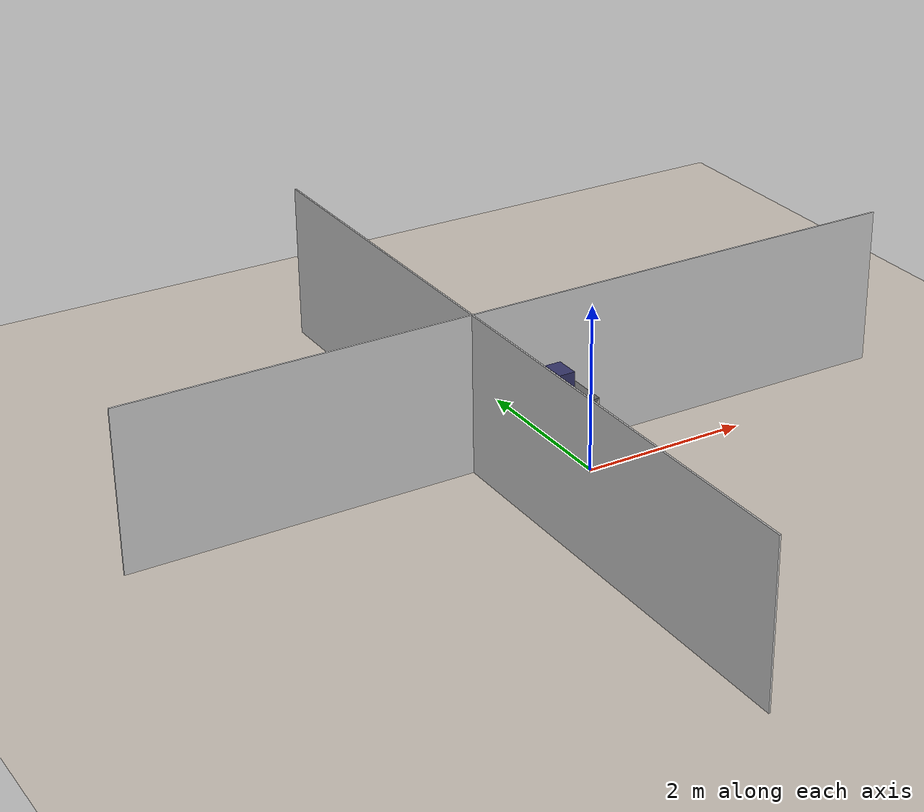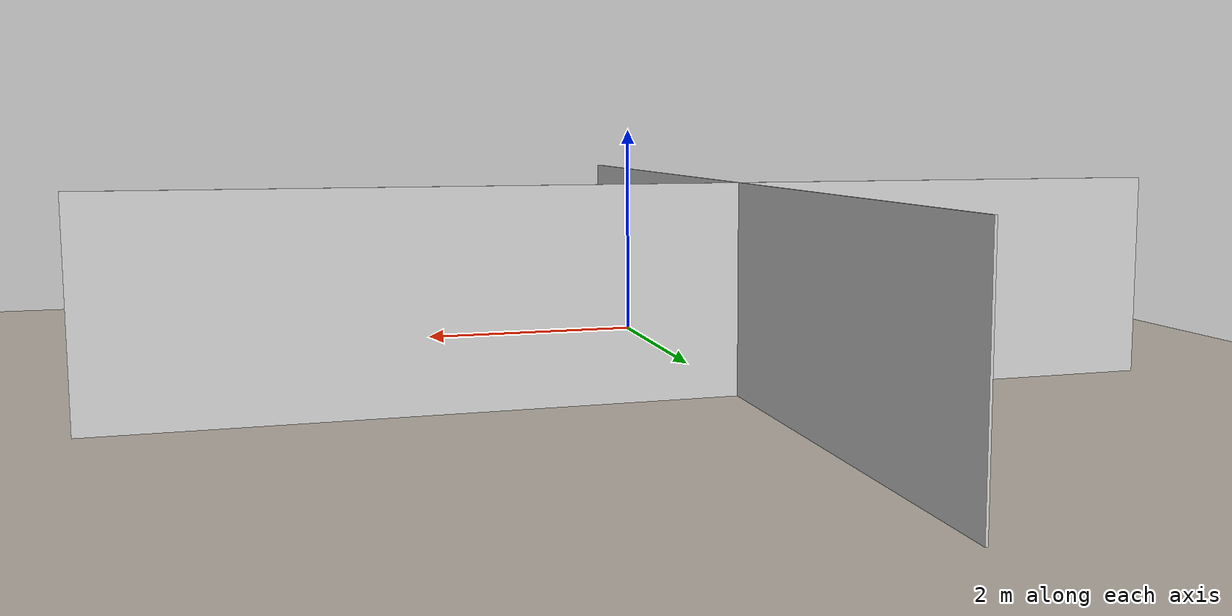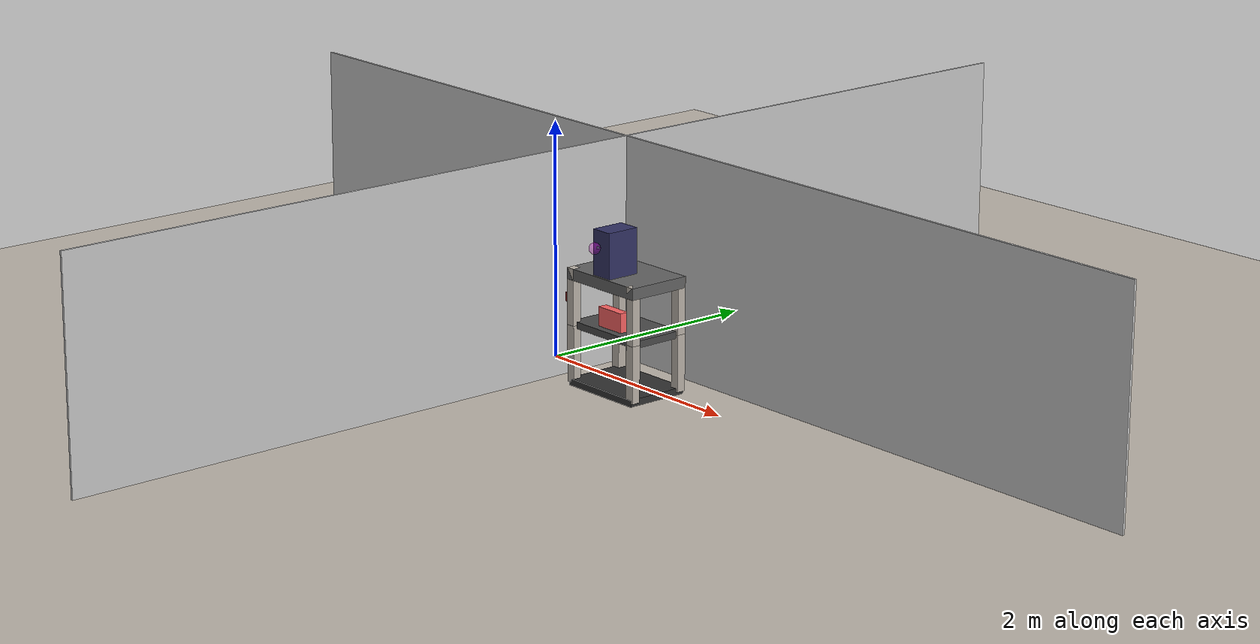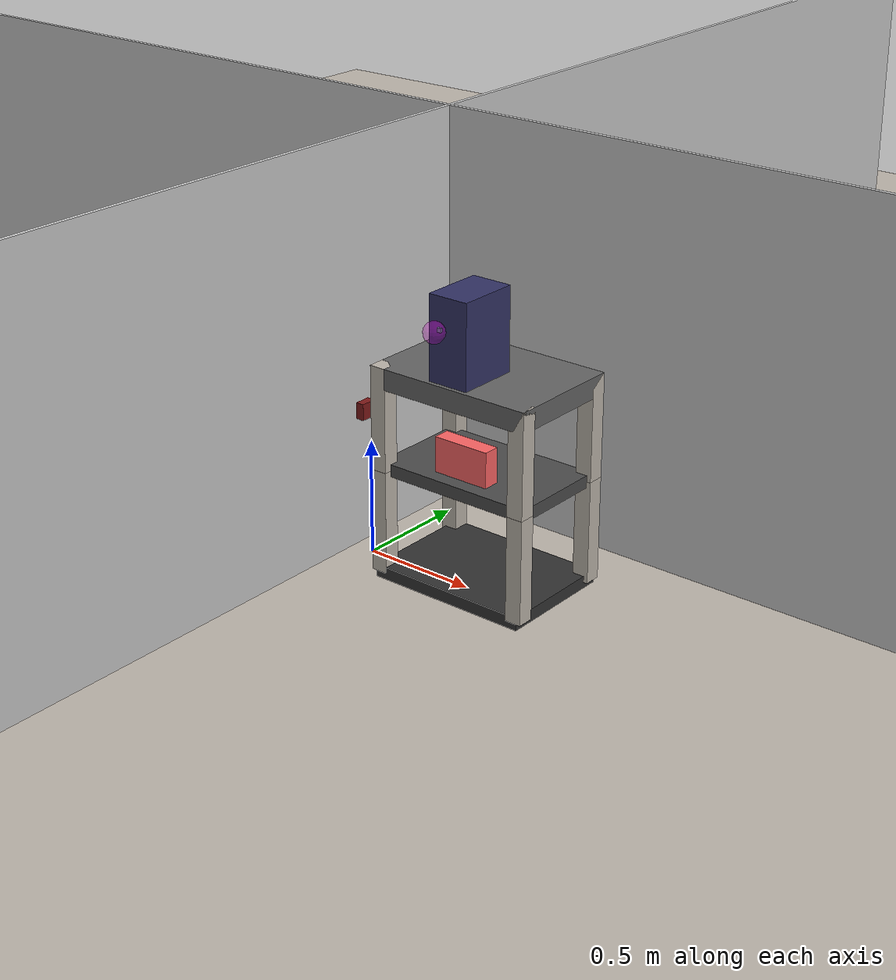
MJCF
<mujoco model="computer_rack_scene">
    <include file="materials.xml"/>
    <include file="cc_sphere.xml"/>
    <include file="computer_rack.xml"/>
    <default>
        <default class="visual">
            <geom contype="0" conaffinity="0" group="2"/>
        </default>
    </default>
    <worldbody>
        <body pos="0 0 -0.445" name="floor">
            <geom type="plane" name="floor" size="50 50 0.1"  material="cream-plaster"/>
        </body>
        <light pos="0 -2 10" mode="trackcom" exponent="1" ambient="0.04 0 0"/>
        <light pos="0 0 10" mode="trackcom" exponent="1" ambient="0.03 0.03 0"/>
    </worldbody>
</mujoco>

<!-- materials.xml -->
<mujocoinclude>
    <asset>
        <texture file="textures/light-wood.png" type="2d" name="tex-light-wood"/>
        <texture file="textures/dark-wood.png" type="2d" name="tex-dark-wood"/>
        <texture file="textures/metal.png" type="2d" name="tex-metal"/>
        <texture file="textures/cream-plaster.png" type="2d" name="tex-cream-plaster"/>
        <texture file="textures/grass.png" type="2d" name="tex-grass"/>
        <material name="light-wood" reflectance="0" texrepeat="15 15" texture="tex-light-wood" texuniform="true"/>
        <material name="dark-wood" reflectance="0" texrepeat="5 5" texture="tex-dark-wood" texuniform="true"/>
        <material name="metal" reflectance="0" texrepeat="5 5" texture="tex-metal" texuniform="true"/>
        <material name="cream-plaster" reflectance="0" texrepeat="5 5" texture="tex-cream-plaster" texuniform="true"/>
        <material name="grass" reflectance="0" texrepeat="0.2 0.2" texture="tex-grass" texuniform="true"/>
    </asset>
</mujocoinclude>

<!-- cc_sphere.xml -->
<mujoco model="cc_sphere">
    <worldbody>
        <body pos="0 0 0" name="cc_sphere">
            <!-- To get the most precise results, the size here should be half of the resolution of the voxelgrid -->
            <geom type="sphere" name="cc_sphere" size="0.005" rgba="1 1 1 0.1"/>
            <joint type="free" name="cc_sphere" damping="0.1"/>
        </body>
    </worldbody>
</mujoco>

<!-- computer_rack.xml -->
<mujoco model="computer_rack">
    <worldbody>
        <body name="computer_rack" pos="0 0.76 -0.445" quat="0.707 0 0 0.707">
            <body name="wall">
                <body name="left_wall" pos="0 0.7 0.975">
                    <geom name="left_wall" type="box" size="5 0.01 1" rgba="0.8 0.8 0.8 1"/>
                    <body name="attach" pos="-0.05 -0.035 -0.3">
                        <geom name="rack_attach" type="box" size="0.005 0.005 0.005" rgba="0.5 0 0 1"/>
                        <geom name="cover" class="visual" type="box" size="0.04 0.02 0.04" rgba="0.5 0.1 0.1 1"/>
                    </body>
                </body>
                <geom name="front_wall" type="box" pos="0.6 0 0.975" size="0.01 5 1" rgba="0.8 0.8 0.8 1"/>
            </body>
            <body name="racks" pos="0 0 0.03">
                <body name="rack1">
                    <geom name="rack1_bottom" type="box" pos="0 0 0" size="0.29 0.4 0.03" material="dark-wood" rgba="0.2 0.2 0.2 1.0"/>
                    <geom name="rack1_post1" type="box" pos="-0.25 -0.38 0.25" size="0.04 0.04 0.25" material="metal"/>
                    <geom name="rack1_post2" type="box" pos="-0.25 0.38 0.25" size="0.04 0.04 0.25" material="metal"/>
                    <geom name="rack1_post3" type="box" pos="0.25 -0.38 0.25" size="0.04 0.04 0.25" material="metal"/>
                    <geom name="rack1_post4" type="box" pos="0.25 0.38 0.25" size="0.04 0.04 0.25" material="metal"/>
                </body>
                <body name="rack2" pos="0 0 0.5">
                    <geom name="rack2_bottom" type="box" size="0.25 0.4 0.03" material="dark-wood"
                          rgba="0.3 0.3 0.3 1.0"/>
                    <geom name="rack2_top" type="box" pos="0 0 0.45" size="0.29 0.42 0.05" material="dark-wood"
                          rgba="0.4 0.4 0.4 1.0"/>
                    <geom name="rack2_post1" type="box" pos="-0.25 -0.38 0.25" size="0.04 0.04 0.25" material="metal"/>
                    <geom name="rack2_post2" type="box" pos="-0.25 0.38 0.25" size="0.04 0.04 0.25" material="metal"/>
                    <geom name="rack2_post3" type="box" pos="0.25 -0.38 0.25" size="0.04 0.04 0.25" material="metal"/>
                    <geom name="rack2_post4" type="box" pos="0.25 0.38 0.25" size="0.04 0.04 0.25" material="metal"/>
                    <geom name="box1" type="box" pos="-0.14 0.0 0.1" size="0.04 0.14 0.1" rgba="1 0.4 0.4 1"/>
                </body>
                <body name="computer" pos="-0.12 0 1">
                    <geom name="case" type="box" pos="0 0 0.2" size="0.15 0.1 0.2" rgba="0.2 0.2 0.4 1"/>
                    <body name="port" pos="-0.15 0.04 0.25">
                        <geom name="port" type="box" size="0.01 0.01 0.01" rgba="0.2 0.6 0.4 1"/>
                        <body name="goal" pos="-0.04 0.0 0.0">
                            <geom name="goal" class="visual" type="sphere" size="0.05" rgba="1 0 1 0.3"/>
                        </body>
                    </body>
                </body>
            </body>
        </body>
    </worldbody>
</mujoco>
